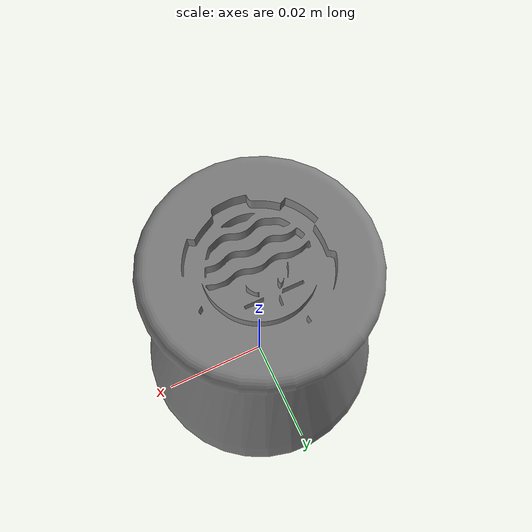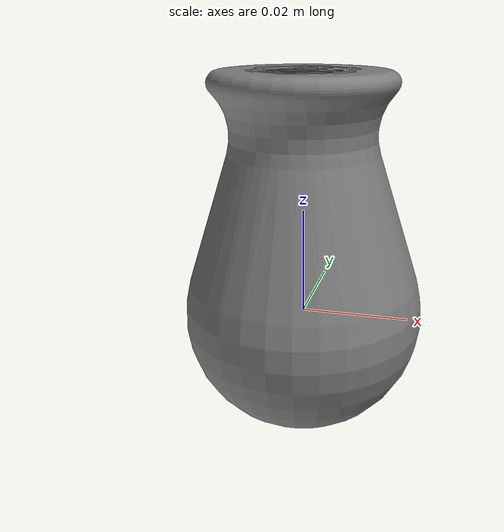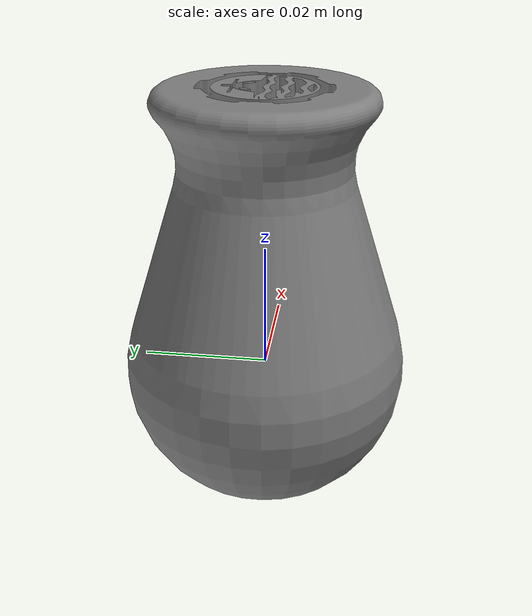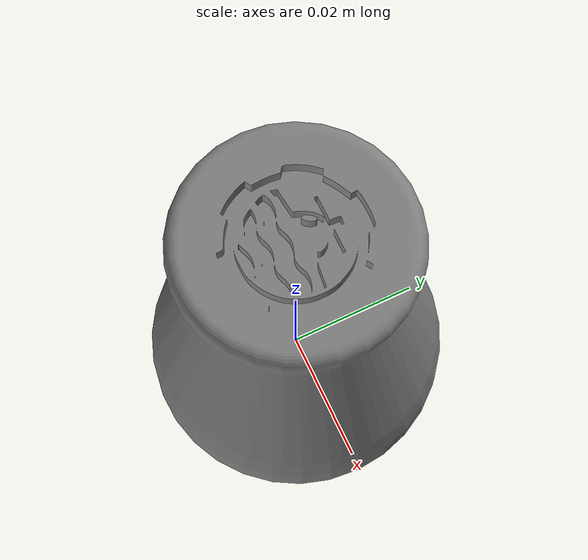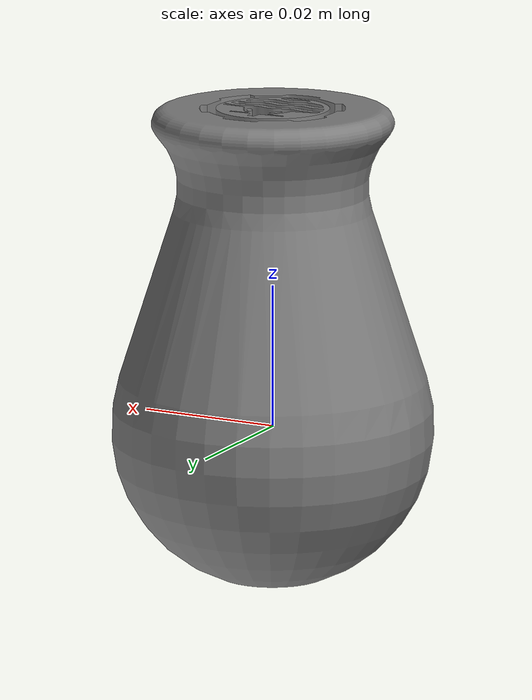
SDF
<?xml version='1.0'?>
<sdf version='1.7'>
  <model name='steelhead_dropper_marker'>
    <link name='dropper_marker'>
      <pose>-0 0 0 0 -0 0</pose>
      <inertial>
        <mass>2</mass>
        <inertia>
          <ixx>0.00030988</ixx>
          <ixy>5.5564e-08</ixy>
          <ixz>3.9324e-07</ixz>
          <iyy>0.0003498</iyy>
          <iyz>1.7659e-06</iyz>
          <izz>0.00030001</izz>
        </inertia>
      </inertial>

      <gravity>1</gravity>

      <!-- Visual Data -->
      <visual name='visual'>
        <pose>0 0 0 0 -0 0</pose>
        <geometry>
          <mesh>
            <uri>model://steelhead_dropper_marker/meshes/steelhead_dropper_marker.stl</uri>
            <scale>0.001 0.001 0.001</scale>
          </mesh>
        </geometry>
        <material>
          <ambient>0.5 0.5 0.5 1</ambient>
          <diffuse>0.5 0.5 0.5 1</diffuse>
          <specular>0.5 0.5 0.5 1</specular>
          <pbr>
            <metal>
              <roughness>0.6</roughness>
              <metalness>0.1</metalness>
            </metal>
          </pbr>
        </material>
        <transparency>0</transparency>
        <cast_shadows>1</cast_shadows>
      </visual>

      <!-- Collision Data-->
      <collision name='collision'>
        <pose>0 0 0 0 1.57 0</pose> <geometry>
          <cylinder>
            <radius>0.02</radius>
            <length>0.15</length>
          </cylinder>
        </geometry>
        <surface>
          <contact>
            <collide_bitmask>2</collide_bitmask>
            <ode>
              <min_depth>0.001</min_depth>
              <max_vel>0.1</max_vel>
            </ode>
          </contact>
        </surface>
      </collision>

    </link>
    <static>0</static>
    <allow_auto_disable>1</allow_auto_disable>

    <plugin
      filename="gz-sim-hydrodynamics-system"
      name="gz::sim::systems::Hydrodynamics">
      <link_name>dropper_marker</link_name>
      <xUabsU>-0.1</xUabsU>
      <xU>-0.01</xU>
      <yVabsV>-3.0</yVabsV>
      <yV>-0.1</yV>
      <zWabsW>-3.0</zWabsW>
      <zW>-0.1</zW>
      <kPabsP>-0.01</kPabsP>
      <mQabsQ>-0.1</mQabsQ>
      <nRabsR>-0.1</nRabsR>
    </plugin>
  </model>
</sdf>
